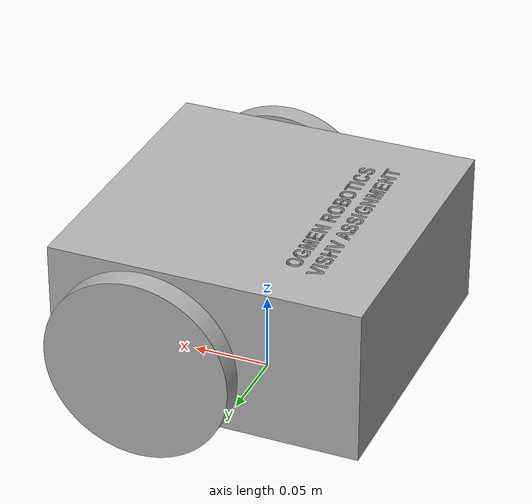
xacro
<?xml version="1.0" ?>
<robot name="ogmen_bot" xmlns:xacro="http://www.ros.org/wiki/xacro">

<xacro:include filename="$(find ogmen_bot_description)/urdf/materials.xacro" />
<xacro:include filename="$(find ogmen_bot_description)/urdf/ogmen_bot.trans" />
<xacro:include filename="$(find ogmen_bot_description)/urdf/ogmen_bot.gazebo" />
<link name="base_link">
  <inertial>
    <origin xyz="8.028730558514525e-05 2.714097016713988e-07 0.06992514423213515" rpy="0 0 0"/>
    <mass value="4.2335821207715645"/>
    <inertia ixx="0.017644" iyy="0.017635" izz="0.028242" ixy="0.0" iyz="-0.0" ixz="-1.6e-05"/>
  </inertial>
  <visual>
    <origin xyz="0 0 0" rpy="0 0 0"/>
    <geometry>
      <mesh filename="package://ogmen_bot_description/meshes/base_link.stl" scale="0.001 0.001 0.001"/>
    </geometry>
    <material name="silver"/>
  </visual>
  <collision>
    <origin xyz="0 0 0" rpy="0 0 0"/>
    <geometry>
      <mesh filename="package://ogmen_bot_description/meshes/base_link.stl" scale="0.001 0.001 0.001"/>
    </geometry>
  </collision>
</link>

<link name="right_wheel_1">
  <inertial>
    <origin xyz="6.938893903907228e-18 0.0075000000000000205 1.3877787807814457e-17" rpy="0 0 0"/>
    <mass value="0.1577707830632794"/>
    <inertia ixx="0.000145" iyy="0.000284" izz="0.000145" ixy="0.0" iyz="0.0" ixz="0.0"/>
  </inertial>
  <visual>
    <origin xyz="-0.035 -0.105 -0.06" rpy="0 0 0"/>
    <geometry>
      <mesh filename="package://ogmen_bot_description/meshes/right_wheel_1.stl" scale="0.001 0.001 0.001"/>
    </geometry>
    <material name="silver"/>
  </visual>
  <collision>
    <origin xyz="-0.035 -0.105 -0.06" rpy="0 0 0"/>
    <geometry>
      <mesh filename="package://ogmen_bot_description/meshes/right_wheel_1.stl" scale="0.001 0.001 0.001"/>
    </geometry>
  </collision>
</link>

<link name="left_wheel_1">
  <inertial>
    <origin xyz="6.938893903907228e-18 -0.00750000000000009 2.0816681711721685e-17" rpy="0 0 0"/>
    <mass value="0.15777078306327938"/>
    <inertia ixx="0.000145" iyy="0.000284" izz="0.000145" ixy="-0.0" iyz="-0.0" ixz="0.0"/>
  </inertial>
  <visual>
    <origin xyz="-0.035 0.105 -0.06" rpy="0 0 0"/>
    <geometry>
      <mesh filename="package://ogmen_bot_description/meshes/left_wheel_1.stl" scale="0.001 0.001 0.001"/>
    </geometry>
    <material name="silver"/>
  </visual>
  <collision>
    <origin xyz="-0.035 0.105 -0.06" rpy="0 0 0"/>
    <geometry>
      <mesh filename="package://ogmen_bot_description/meshes/left_wheel_1.stl" scale="0.001 0.001 0.001"/>
    </geometry>
  </collision>
</link>

<link name="castor_1">
  <inertial>
    <origin xyz="0.03900000000000002 3.056047790149986e-18 -0.008558719423394525" rpy="0 0 0"/>
    <mass value="0.0156940067555203"/>
    <inertia ixx="1e-06" iyy="1e-06" izz="1e-06" ixy="-0.0" iyz="0.0" ixz="0.0"/>
  </inertial>
  <visual>
    <origin xyz="0.1 -0.0 -0.02" rpy="0 0 0"/>
    <geometry>
      <mesh filename="package://ogmen_bot_description/meshes/castor_1.stl" scale="0.001 0.001 0.001"/>
    </geometry>
    <material name="silver"/>
  </visual>
  <collision>
    <origin xyz="0.1 -0.0 -0.02" rpy="0 0 0"/>
    <geometry>
      <mesh filename="package://ogmen_bot_description/meshes/castor_1.stl" scale="0.001 0.001 0.001"/>
    </geometry>
  </collision>
</link>
<link name="lidar"/>
<link name="rgb"/>

<joint name="lidar_joint" type="fixed">
  <origin xyz="0.0 0.0 0.15" rpy="0 0 0"/>
  <parent link="base_link"/>
  <child link="lidar"/>
</joint>

<joint name="rgb_joint" type="fixed">
  <origin xyz="0.05 0.0 0.15" rpy="0 0 0"/>
  <parent link="base_link"/>
  <child link="rgb"/>
</joint>

<joint name="right_wheel_joint" type="continuous">
  <origin xyz="0.035 0.105 0.06" rpy="0 0 0"/>
  <parent link="base_link"/>
  <child link="right_wheel_1"/>
  <axis xyz="0.0 1.0 0.0"/>
</joint>

<joint name="left_wheel_joint" type="continuous">
  <origin xyz="0.035 -0.105 0.06" rpy="0 0 0"/>
  <parent link="base_link"/>
  <child link="left_wheel_1"/>
  <axis xyz="0.0 1.0 0.0"/>
</joint>

<joint name="castor_joint" type="fixed">
  <origin xyz="-0.1 0.0 0.02" rpy="0 0 0"/>
  <parent link="base_link"/>
  <child link="castor_1"/>
</joint>

</robot>

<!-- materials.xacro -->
<robot name="ogmen_bot" xmlns:xacro="http://www.ros.org/wiki/xacro" >

<material name="silver">
  <color rgba="0.700 0.700 0.700 1.000"/>
</material>

</robot>

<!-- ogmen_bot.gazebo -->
<robot name="ogmen_bot" xmlns:xacro="http://www.ros.org/wiki/xacro" >

<xacro:property name="body_color" value="Gazebo/Silver" />

<gazebo>
  <plugin name="control" filename="libgazebo_ros_control.so"/>
</gazebo>
<gazebo reference="base_link">
  <material>${body_color}</material>
  <mu1>0.2</mu1>
  <mu2>0.2</mu2>
  <selfCollide>true</selfCollide>
  <gravity>true</gravity>
</gazebo>

<gazebo reference="right_wheel_1">
  <material>${body_color}</material>
  <mu1>10</mu1>
  <mu2>10</mu2>
  <selfCollide>true</selfCollide>
</gazebo>

<gazebo reference="left_wheel_1">
  <material>${body_color}</material>
  <mu1>10</mu1>
  <mu2>10</mu2>
  <selfCollide>true</selfCollide>
</gazebo>

<gazebo reference="castor_1">
  <material>${body_color}</material>
  <mu1>0.2</mu1>
  <mu2>0.2</mu2>
  <selfCollide>true</selfCollide>
</gazebo>

<gazebo reference="lidar">
  <material>${body_color}</material>
  <mu1>0.2</mu1>
  <mu2>0.2</mu2>
  <selfCollide>true</selfCollide>
</gazebo>

<gazebo reference="rgb">
  <material>${body_color}</material>
  <mu1>0.2</mu1>
  <mu2>0.2</mu2>
  <selfCollide>true</selfCollide>
</gazebo>

<gazebo>
  <plugin name="differential_drive_controller" filename="libgazebo_ros_diff_drive.so">

    <!-- Plugin update rate in Hz -->
    <updateRate>10</updateRate>

    <!-- Name of left joint, defaults to `left_joint` -->
    <leftJoint>left_wheel_joint</leftJoint>

    <!-- Name of right joint, defaults to `right_joint` -->
    <rightJoint>right_wheel_joint</rightJoint>

    <!-- The distance from the center of one wheel to the other, in meters, defaults to 0.34 m -->
    <wheelSeparation>0.20</wheelSeparation>

    <!-- Diameter of the wheels, in meters, defaults to 0.15 m -->
    <wheelDiameter>0.12</wheelDiameter>

    <!-- Wheel acceleration, in rad/s^2, defaults to 0.0 rad/s^2 -->
    <wheelAcceleration>0.5</wheelAcceleration>

    <!-- Maximum torque which the wheels can produce, in Nm, defaults to 5 Nm -->
    <wheelTorque>5</wheelTorque>

    <!-- Topic to receive geometry_msgs/Twist message commands, defaults to `cmd_vel` -->
    <commandTopic>cmd_vel</commandTopic>

    <!-- Topic to publish nav_msgs/Odometry messages, defaults to `odom` -->
    <odometryTopic>odom</odometryTopic>

    <!-- Odometry frame, defaults to `odom` -->
    <odometryFrame>odom</odometryFrame>

    <!-- Robot frame to calculate odometry from, defaults to `base_footprint` -->
    <robotBaseFrame>base_link</robotBaseFrame>

    <!-- Odometry source, 0 for ENCODER, 1 for WORLD, defaults to WORLD -->
    <odometrySource>1</odometrySource>

    <!-- Set to true to publish transforms for the wheel links, defaults to false -->
    <publishWheelTF>true</publishWheelTF>

    <!-- Set to true to publish transforms for the odometry, defaults to true -->
    <publishOdom>true</publishOdom>

    <!-- Set to true to publish sensor_msgs/JointState on /joint_states for the wheel joints, defaults to false -->
    <publishWheelJointState>true</publishWheelJointState>

    <!-- Set to true to swap right and left wheels, defaults to true -->
    <legacyMode>false</legacyMode>
  </plugin>
</gazebo>
<gazebo reference="lidar">
    <sensor type="ray" name="head_hokuyo_sensor">
      <pose>0 0 0 0 0 0</pose>
      <visualize>false</visualize>
      <update_rate>40</update_rate>
      <ray>
        <scan>
          <horizontal>
            <samples>720</samples>
            <resolution>1</resolution>
            <min_angle>-3.14</min_angle>
            <max_angle>3.140</max_angle>
          </horizontal>
        </scan>
        <range>
          <min>0.10</min>
          <max>30.0</max>
          <resolution>0.01</resolution>
        </range>
        <noise>
          <type>gaussian</type>
          <mean>0.0</mean>
          <stddev>0.01</stddev>
        </noise>
      </ray>
      <plugin name="gazebo_ros_head_hokuyo_controller" filename="libgazebo_ros_laser.so">
        <topicName>/scan</topicName>
        <frameName>lidar_1</frameName>
      </plugin>
    </sensor>
  </gazebo>
<gazebo reference="rgb">
    <sensor type="camera" name="camera1">
      <update_rate>30.0</update_rate>
      <camera name="head">
        <horizontal_fov>1.3962634</horizontal_fov>
        <image>
          <width>800</width>
          <height>800</height>
          <format>R8G8B8</format>
        </image>
        <clip>
          <near>0.02</near>
          <far>300</far>
        </clip>
        <noise>
          <type>gaussian</type>
          <!-- Noise is sampled independently per pixel on each frame.
               That pixel's noise value is added to each of its color
               channels, which at that point lie in the range [0,1]. -->
          <mean>0.0</mean>
          <stddev>0.007</stddev>
        </noise>
      </camera>
      <plugin name="camera_controller" filename="libgazebo_ros_camera.so">
        <alwaysOn>true</alwaysOn>
        <updateRate>0.0</updateRate>
        <cameraName>ogmen_bot/camera1</cameraName>
        <imageTopicName>image_raw</imageTopicName>
        <cameraInfoTopicName>camera_info</cameraInfoTopicName>
        <frameName>rgb</frameName>
        <hackBaseline>0.07</hackBaseline>
        <distortionK1>0.0</distortionK1>
        <distortionK2>0.0</distortionK2>
        <distortionK3>0.0</distortionK3>
        <distortionT1>0.0</distortionT1>
        <distortionT2>0.0</distortionT2>
      </plugin>
    </sensor>
  </gazebo>

</robot>
